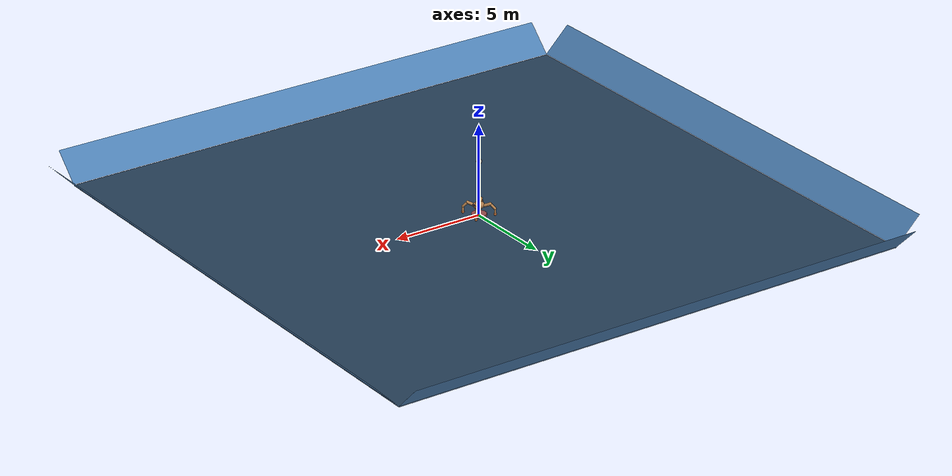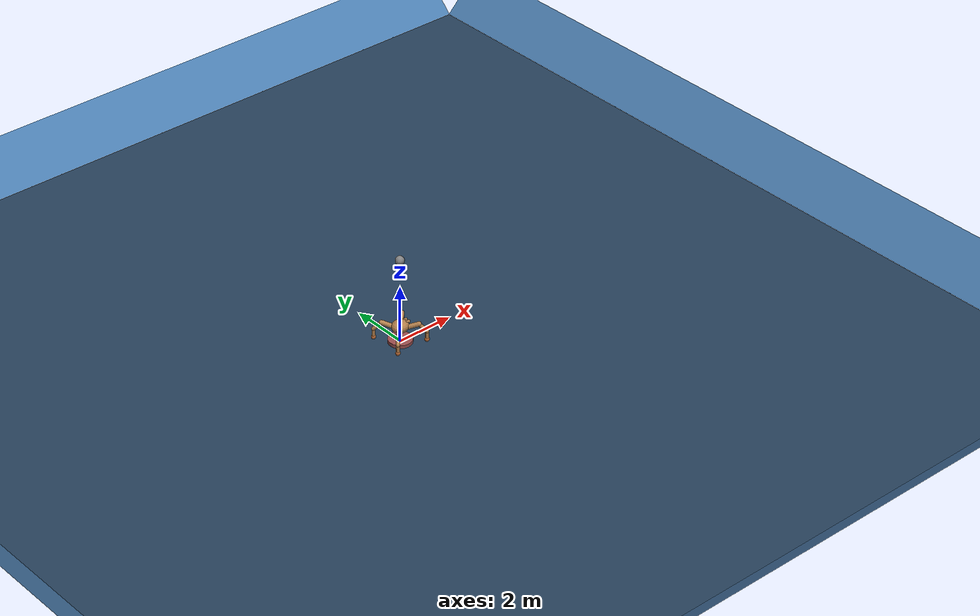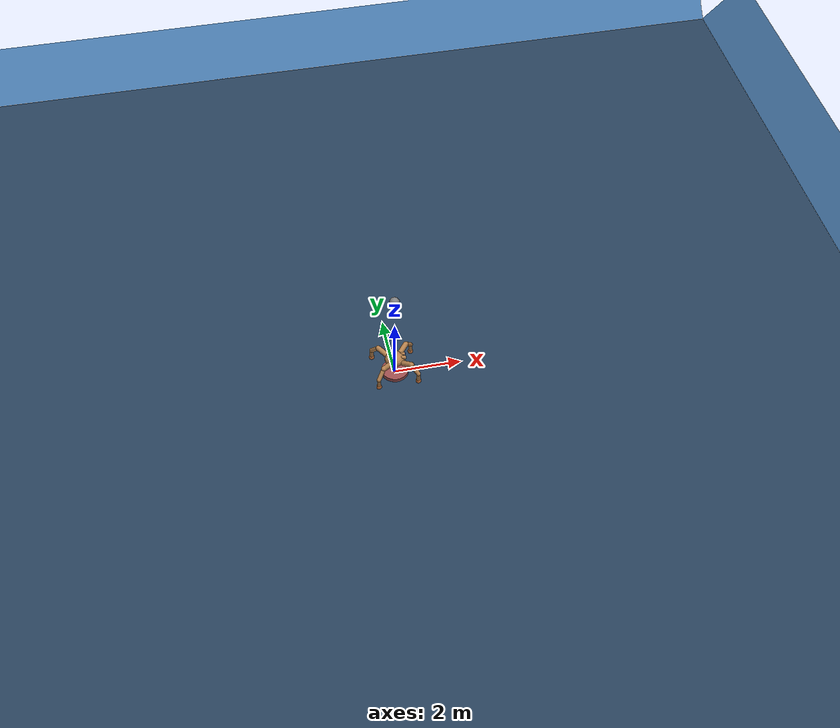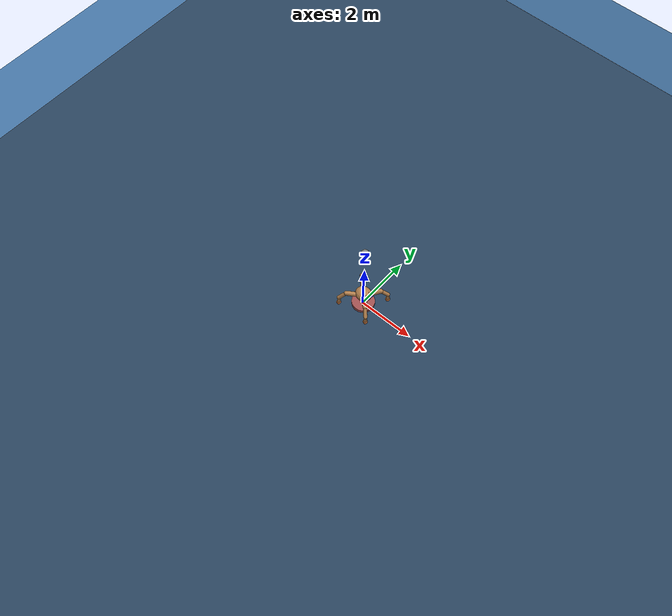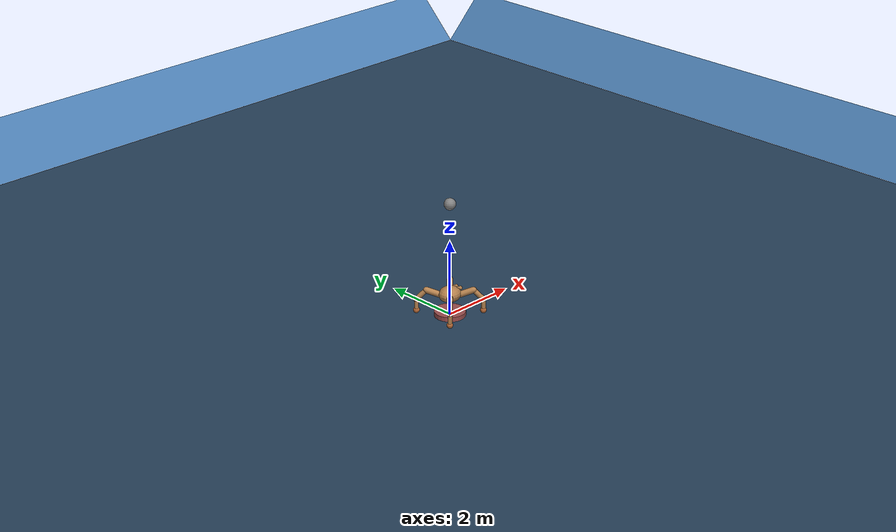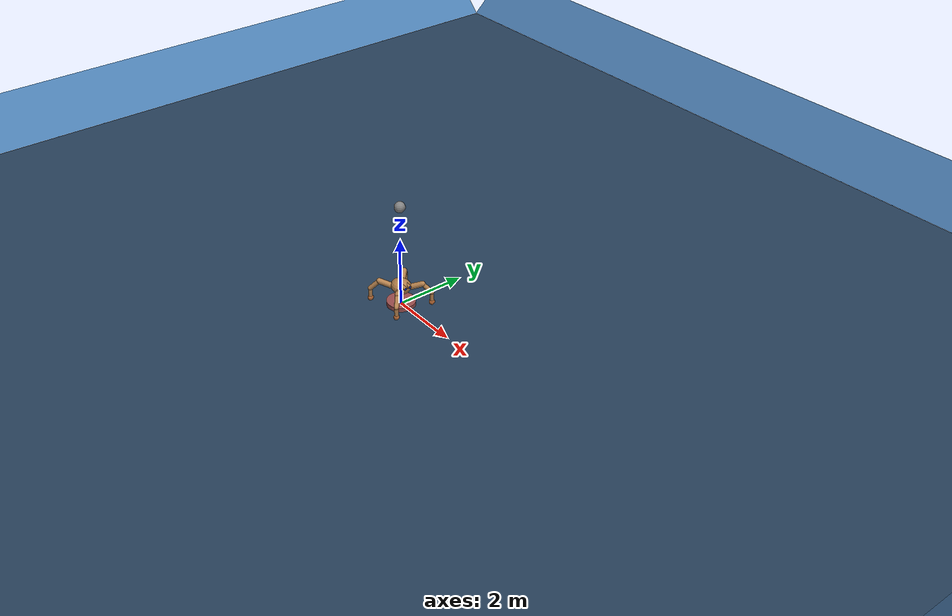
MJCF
<mujoco model="merged">
  <option timestep=".005"/>
  <visual>
    <headlight ambient=".4 .4 .4" diffuse=".8 .8 .8" specular="0.1 0.1 0.1"/>
    <quality shadowsize="2048"/>
    <rgba rangefinder="1 1 0.1 0.1"/>
    <map znear=".005" zfar="20"/>
  </visual>
  <default>

    <geom solimp=".9 .99 .003" solref=".01 1"/>
    <default class="body">
      <geom  type="capsule" size=".08" condim="1" material="self" density="500"/>
      <joint type="hinge" damping="30" armature=".01"
             limited="true" solimplimit="0 .99 .01"/>
      <default class="hip">
        <default class="yaw">
          <joint axis="0 0 1" range="-50 50"/>
        </default>
        <default class="pitch">
          <joint axis="0 1 0" range="-20 60"/>
        </default>
        <geom fromto="0 0 0 .3 0 .11"/>
      </default>
      <default class="knee">
        <joint axis="0 1 0" range="-60 50"/>
        <geom size=".065" fromto="0 0 0 .25 0 -.25"/>
      </default>
      <default class="ankle">
        <joint axis="0 1 0" range="-45 55"/>
        <geom size=".055" fromto="0 0 0 0 0 -.25"/>
      </default>
      <default class="toe">
        <geom type="sphere" size=".08" material="effector" friction="1.5"/>
        <site type="sphere" size=".084" material="site"  group="4"/>
      </default>
    </default>
    <default class="rangefinder">
      <site type="capsule" size=".005 .1" material="site" group="4"/>
    </default>
    <default class="wall">
      <geom type="plane" material="decoration"/>
    </default>

    <default class="coupling">
      <equality solimp="0.95 0.99 0.01" solref=".005 .5"/>
    </default>

    <general ctrllimited="true" gainprm="1000" biasprm="0 -1000" biastype="affine" dyntype="filter" dynprm=".1"/>
    <default class="yaw_act">
      <general ctrlrange="-1 1"/>
    </default>
    <default class="lift_act">
      <general ctrlrange="-1 1.1"/>
    </default>
    <default class="extend_act">
      <general ctrlrange="-.8 .8"/>
    </default>

  </default>
  <asset>

      <texture name="skybox" type="skybox" builtin="gradient" rgb1=".4 .6 .8" rgb2="0 0 0"
               width="800" height="800" mark="random" markrgb="1 1 1"/>

    <texture name="grid" type="2d" builtin="checker" rgb1=".1 .2 .3" rgb2=".2 .3 .4" width="300" height="300" mark="edge" markrgb=".2 .3 .4"/>
    <material name="grid" texture="grid" texrepeat="1 1" texuniform="true" reflectance=".2"/>
    <material name="self" rgba=".7 .5 .3 1"/>
    <material name="self_default" rgba=".7 .5 .3 1"/>
    <material name="self_highlight" rgba="0 .5 .3 1"/>
    <material name="effector" rgba=".7 .4 .2 1"/>
    <material name="effector_default" rgba=".7 .4 .2 1"/>
    <material name="effector_highlight" rgba="0 .5 .3 1"/>
    <material name="decoration" rgba=".3 .5 .7 1"/>
    <material name="eye" rgba="0 .2 1 1"/>
    <material name="target" rgba=".6 .3 .3 1"/>
    <material name="target_default" rgba=".6 .3 .3 1"/>
    <material name="target_highlight" rgba=".6 .3 .3 .4"/>
    <material name="site" rgba=".5 .5 .5 .3"/>

    <hfield name="terrain" ncol="201" nrow="201" size="30 30 5 .1"/>

    <texture name="ball" builtin="checker" mark="cross" width="151" height="151"
             rgb1="0.1 0.1 0.1" rgb2="0.9 0.9 0.9" markrgb="1 1 1"/>
    <material name="ball" texture="ball" />

  </asset>
  <worldbody>

    <geom name="floor" type="plane" size="15 15 .5" material="grid"/>
    <geom name="wall_px" class="wall" pos="-15.7 0 .7" zaxis="1 0 1"  size="1 15 .5"/>
    <geom name="wall_py" class="wall" pos="0 -15.7 .7" zaxis="0 1 1"  size="15 1 .5"/>
    <geom name="wall_nx" class="wall" pos="15.7 0 .7" zaxis="-1 0 1"  size="1 15 .5"/>
    <geom name="wall_ny" class="wall" pos="0 15.7 .7" zaxis="0 -1 1"  size="15 1 .5"/>
    <site name="target" type="cylinder" size=".4 .06" pos="0 0 .05" material="target"/>

    <camera name="global"  pos="-10 10 10" xyaxes="-1 -1 0 1 0 1" mode="trackcom"/>
    <body name="torso" childclass="body" pos="0 0 .57">
      <joint type="free" limited="false" armature="0" damping="0" stiffness="0" ref="0" springref="0" frictionloss="0" range="0 0" margin="0" solreflimit="0.02 1" solimplimit="0.9 0.95 0.001 0.5 2" name="root"/>

      <camera name="x"  pos="-1.7 0 1" xyaxes="0 -1 0 .75 0 1" mode="trackcom"/>
      <camera name="y"  pos="0 4 2" xyaxes="-1 0 0 0 -.5 1" mode="trackcom"/>
      <camera name="egocentric"  pos=".3 0 .11" xyaxes="0 -1 0 .4 0 1" fovy="60"/>
      <light name="light" pos="0 0 4" mode="trackcom"/>

      <geom name="eye_r" type="cylinder" size=".05"  fromto=".1 -.07 .12 .31 -.07 .08" mass="0"/>
      <site name="pupil_r" type="sphere" size=".033"  pos=".3 -.07 .08" zaxis="1 0 0" material="eye"/>
      <geom name="eye_l" type="cylinder" size=".05"  fromto=".1 .07 .12 .31 .07 .08" mass="0"/>
      <site name="pupil_l" type="sphere" size=".033"  pos=".3 .07 .08" zaxis="1 0 0" material="eye"/>
      <site name="workspace" type="sphere" size=".3 .3 .3"  material="site" pos=".8 0 -.2" group="3"/>

      <site name="rf_00" class="rangefinder" fromto=".41 -.02  .11 .34 0 .115"/>
      <site name="rf_01" class="rangefinder" fromto=".41 -.01  .11 .34 0 .115"/>
      <site name="rf_02" class="rangefinder" fromto=".41   0   .11 .34 0 .115"/>
      <site name="rf_03" class="rangefinder" fromto=".41  .01  .11 .34 0 .115"/>
      <site name="rf_04" class="rangefinder" fromto=".41  .02  .11 .34 0 .115"/>
      <site name="rf_10" class="rangefinder" fromto=".41 -.02  .1  .36 0 .11"/>
      <site name="rf_11" class="rangefinder" fromto=".41 -.02  .1  .36 0 .11"/>
      <site name="rf_12" class="rangefinder" fromto=".41   0   .1  .36 0 .11"/>
      <site name="rf_13" class="rangefinder" fromto=".41  .01  .1  .36 0 .11"/>
      <site name="rf_14" class="rangefinder" fromto=".41  .02  .1  .36 0 .11"/>
      <site name="rf_20" class="rangefinder" fromto=".41 -.02  .09 .38 0 .105"/>
      <site name="rf_21" class="rangefinder" fromto=".41 -.01  .09 .38 0 .105"/>
      <site name="rf_22" class="rangefinder" fromto=".41   0   .09 .38 0 .105"/>
      <site name="rf_23" class="rangefinder" fromto=".41  .01  .09 .38 0 .105"/>
      <site name="rf_24" class="rangefinder" fromto=".41  .02  .09 .38 0 .105"/>
      <site name="rf_30" class="rangefinder" fromto=".41 -.02  .08 .4  0 .1"/>
      <site name="rf_31" class="rangefinder" fromto=".41 -.01  .08 .4  0 .1"/>
      <site name="rf_32" class="rangefinder" fromto=".41   0   .08 .4  0 .1"/>
      <site name="rf_33" class="rangefinder" fromto=".41  .01  .08 .4  0 .1"/>
      <site name="rf_34" class="rangefinder" fromto=".41  .02  .08 .4  0 .1"/>

      <geom name="torso" type="ellipsoid" size=".3 .27 .2" density="1000"/>
      <site name="torso_touch" type="box" size=".26 .26 .26" rgba="0 0 1 0"/>
      <site name="torso" size=".05" rgba="1 0 0 1" />

      <body name="hip_front_left" pos=".2 .2 0" euler="0 0 45" childclass="hip">
        <joint name="yaw_front_left" class="yaw"/>
        <joint name="pitch_front_left" class="pitch"/>
        <geom name="thigh_front_left"/>
        <body name="knee_front_left" pos=".3 0 .11" childclass="knee">
          <joint name="knee_front_left"/>
          <geom name="shin_front_left"/>
          <body name="ankle_front_left" pos=".25 0 -.25" childclass="ankle">
            <joint name="ankle_front_left"/>
            <geom name="foot_front_left"/>
            <body name="toe_front_left" pos="0 0 -.3" childclass="toe">
              <geom name="toe_front_left"/>
              <site name="toe_front_left"/>
            </body>
          </body>
        </body>
      </body>

      <body name="hip_front_right" pos=".2 -.2 0" euler="0 0 -45" childclass="hip">
        <joint name="yaw_front_right" class="yaw"/>
        <joint name="pitch_front_right" class="pitch"/>
        <geom name="thigh_front_right"/>
        <body name="knee_front_right" pos=".3 0 .11" childclass="knee">
          <joint name="knee_front_right"/>
          <geom name="shin_front_right"/>
          <body name="ankle_front_right" pos=".25 0 -.25" childclass="ankle">
            <joint name="ankle_front_right"/>
            <geom name="foot_front_right"/>
            <body name="toe_front_right" pos="0 0 -.3" childclass="toe">
              <geom name="toe_front_right"/>
              <site name="toe_front_right"/>
            </body>
          </body>
        </body>
      </body>

      <body name="hip_back_right" pos="-.2 -.2 0" euler="0 0 -135" childclass="hip">
        <joint name="yaw_back_right" class="yaw"/>
        <joint name="pitch_back_right" class="pitch"/>
        <geom name="thigh_back_right"/>
        <body name="knee_back_right" pos=".3 0 .11" childclass="knee">
          <joint name="knee_back_right"/>
          <geom name="shin_back_right"/>
          <body name="ankle_back_right" pos=".25 0 -.25" childclass="ankle">
            <joint name="ankle_back_right"/>
            <geom name="foot_back_right"/>
            <body name="toe_back_right" pos="0 0 -.3" childclass="toe">
              <geom name="toe_back_right"/>
              <site name="toe_back_right"/>
            </body>
          </body>
        </body>
      </body>

      <body name="hip_back_left" pos="-.2 .2 0" euler="0 0 135" childclass="hip">
        <joint name="yaw_back_left" class="yaw"/>
        <joint name="pitch_back_left" class="pitch"/>
        <geom name="thigh_back_left"/>
        <body name="knee_back_left" pos=".3 0 .11" childclass="knee">
          <joint name="knee_back_left"/>
          <geom name="shin_back_left"/>
          <body name="ankle_back_left" pos=".25 0 -.25" childclass="ankle">
            <joint name="ankle_back_left"/>
            <geom name="foot_back_left"/>
            <body name="toe_back_left" pos="0 0 -.3" childclass="toe">
              <geom name="toe_back_left"/>
              <site name="toe_back_left"/>
            </body>
          </body>
        </body>
      </body>
    </body>

    <body name="ball" pos="0 0 3">
      <joint type="free" limited="false" armature="0" damping="0" stiffness="0" ref="0" springref="0" frictionloss="0" range="0 0" margin="0" solreflimit="0.02 1" solimplimit="0.9 0.95 0.001 0.5 2" name="ball_root"/>
      <geom name="ball" size=".15" material="ball" priority="1" condim="6" friction=".7 .005 .005"
            solref="-10000 -30"/>
      <light name="ball_light" pos="0 0 4" mode="trackcom"/>
    </body>

  </worldbody>
  <tendon>

    <fixed name="coupling_front_left">
      <joint joint="pitch_front_left"      coef=".333"/>
      <joint joint="knee_front_left"       coef=".333"/>
      <joint joint="ankle_front_left"      coef=".333"/>
    </fixed>
    <fixed name="coupling_front_right">
      <joint joint="pitch_front_right"      coef=".333"/>
      <joint joint="knee_front_right"       coef=".333"/>
      <joint joint="ankle_front_right"      coef=".333"/>
    </fixed>
    <fixed name="coupling_back_right">
      <joint joint="pitch_back_right"      coef=".333"/>
      <joint joint="knee_back_right"       coef=".333"/>
      <joint joint="ankle_back_right"      coef=".333"/>
    </fixed>
    <fixed name="coupling_back_left">
      <joint joint="pitch_back_left"      coef=".333"/>
      <joint joint="knee_back_left"       coef=".333"/>
      <joint joint="ankle_back_left"      coef=".333"/>
    </fixed>

    <fixed name="extend_front_left">
      <joint joint="pitch_front_left"      coef=".25"/>
      <joint joint="knee_front_left"       coef="-.5"/>
      <joint joint="ankle_front_left"      coef=".25"/>
    </fixed>
    <fixed name="lift_front_left">
      <joint joint="pitch_front_left"      coef=".5"/>
      <joint joint="ankle_front_left"      coef="-.5"/>
    </fixed>

    <fixed name="extend_front_right">
      <joint joint="pitch_front_right"     coef=".25"/>
      <joint joint="knee_front_right"      coef="-.5"/>
      <joint joint="ankle_front_right"     coef=".25"/>
    </fixed>
    <fixed name="lift_front_right">
      <joint joint="pitch_front_right"     coef=".5"/>
      <joint joint="ankle_front_right"     coef="-.5"/>
    </fixed>

    <fixed name="extend_back_right">
      <joint joint="pitch_back_right"     coef=".25"/>
      <joint joint="knee_back_right"      coef="-.5"/>
      <joint joint="ankle_back_right"     coef=".25"/>
    </fixed>
    <fixed name="lift_back_right">
      <joint joint="pitch_back_right"     coef=".5"/>
      <joint joint="ankle_back_right"     coef="-.5"/>
    </fixed>

    <fixed name="extend_back_left">
      <joint joint="pitch_back_left"      coef=".25"/>
      <joint joint="knee_back_left"       coef="-.5"/>
      <joint joint="ankle_back_left"      coef=".25"/>
    </fixed>
    <fixed name="lift_back_left">
      <joint joint="pitch_back_left"     coef=".5"/>
      <joint joint="ankle_back_left"     coef="-.5"/>
    </fixed>

  </tendon>
  <actuator>

    <general name="yaw_front_left" class="yaw_act" joint="yaw_front_left"/>
    <general name="lift_front_left" class="lift_act" tendon="lift_front_left"/>
    <general name="extend_front_left" class="extend_act" tendon="extend_front_left"/>
    <general name="yaw_front_right" class="yaw_act" joint="yaw_front_right"/>
    <general name="lift_front_right" class="lift_act" tendon="lift_front_right"/>
    <general name="extend_front_right" class="extend_act" tendon="extend_front_right"/>
    <general name="yaw_back_right" class="yaw_act" joint="yaw_back_right"/>
    <general name="lift_back_right" class="lift_act" tendon="lift_back_right"/>
    <general name="extend_back_right" class="extend_act" tendon="extend_back_right"/>
    <general name="yaw_back_left" class="yaw_act" joint="yaw_back_left"/>
    <general name="lift_back_left" class="lift_act" tendon="lift_back_left"/>
    <general name="extend_back_left" class="extend_act" tendon="extend_back_left"/>

  </actuator>
  <equality>

    <tendon name="coupling_front_left" tendon1="coupling_front_left" class="coupling"/>
    <tendon name="coupling_front_right" tendon1="coupling_front_right" class="coupling"/>
    <tendon name="coupling_back_right" tendon1="coupling_back_right" class="coupling"/>
    <tendon name="coupling_back_left" tendon1="coupling_back_left" class="coupling"/>

  </equality>
  <sensor>

    <accelerometer name="imu_accel" site="torso"/>
    <gyro name="imu_gyro" site="torso"/>
    <velocimeter name="velocimeter" site="torso"/>
    <force name="force_toe_front_left" site="toe_front_left"/>
    <force name="force_toe_front_right" site="toe_front_right"/>
    <force name="force_toe_back_right" site="toe_back_right"/>
    <force name="force_toe_back_left" site="toe_back_left"/>
    <torque name="torque_toe_front_left" site="toe_front_left"/>
    <torque name="torque_toe_front_right" site="toe_front_right"/>
    <torque name="torque_toe_back_right" site="toe_back_right"/>
    <torque name="torque_toe_back_left" site="toe_back_left"/>
    <subtreecom name="center_of_mass" body="torso"/>

  </sensor>
</mujoco>
